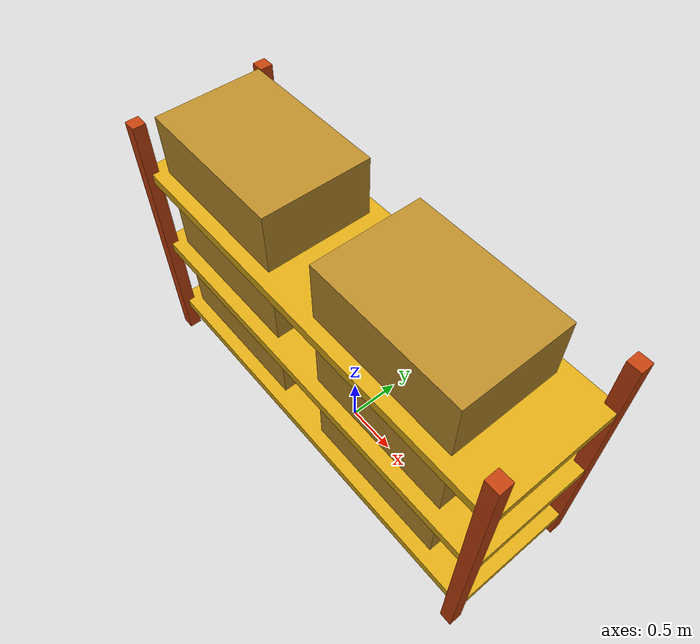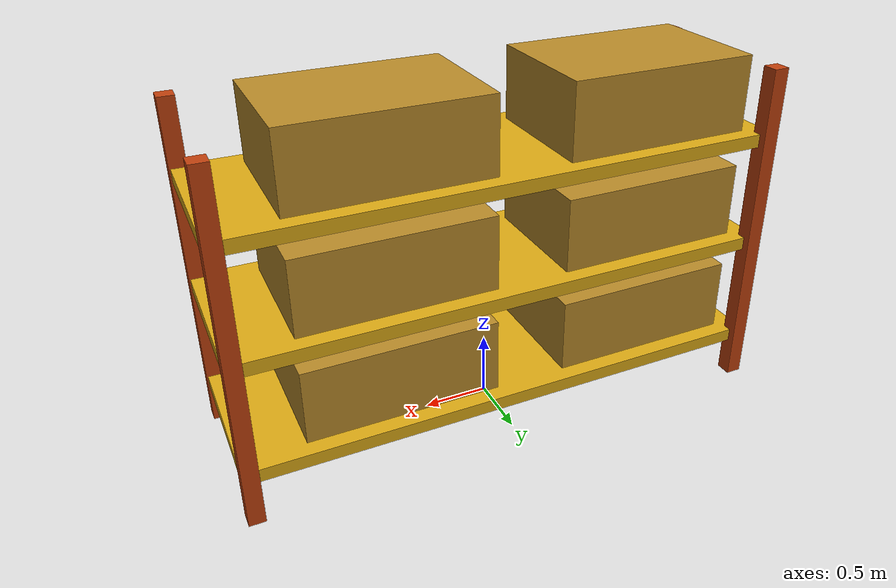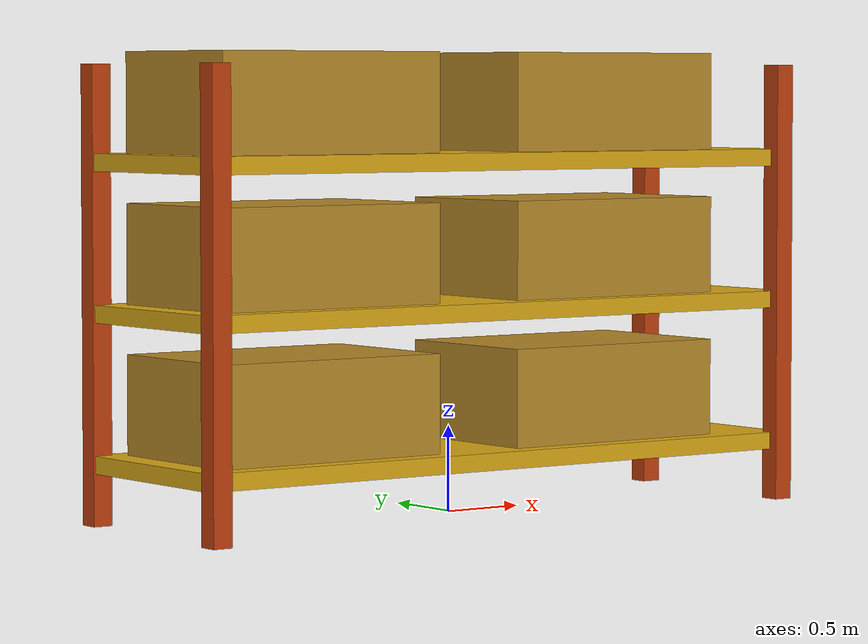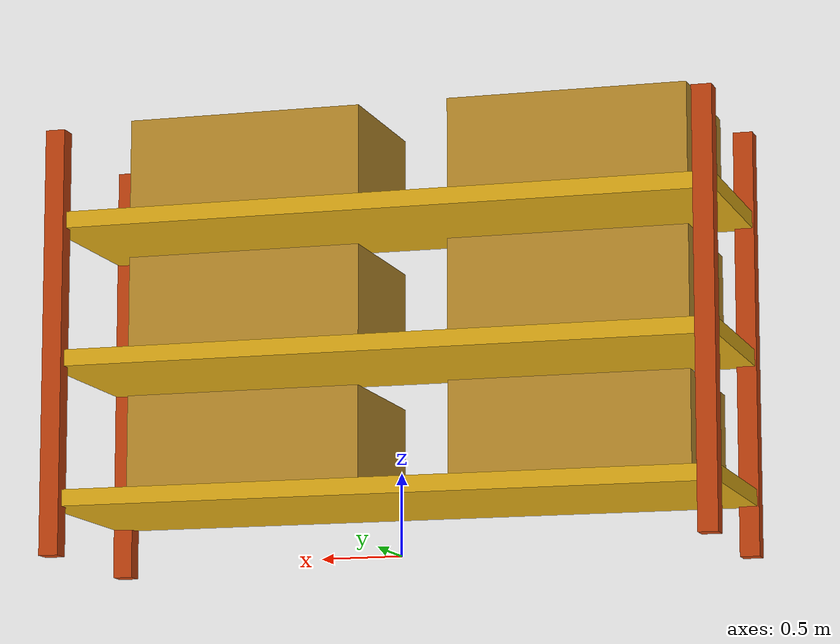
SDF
<?xml version="1.0"?>
<!-- Reusable local pallet rack: orange frame, yellow decks, and cartons. -->
<sdf version="1.9">
  <model name="pallet_rack">
    <static>true</static>
    <link name="frame">
      <collision name="left_front"><pose>-2 -0.62 1.3 0 0 0</pose><geometry><box><size>.12 .12 2.6</size></box></geometry></collision>
      <collision name="left_back"><pose>-2 .62 1.3 0 0 0</pose><geometry><box><size>.12 .12 2.6</size></box></geometry></collision>
      <collision name="right_front"><pose>2 -0.62 1.3 0 0 0</pose><geometry><box><size>.12 .12 2.6</size></box></geometry></collision>
      <collision name="right_back"><pose>2 .62 1.3 0 0 0</pose><geometry><box><size>.12 .12 2.6</size></box></geometry></collision>
      <collision name="deck_low"><pose>0 0 .35 0 0 0</pose><geometry><box><size>4.1 1.25 .10</size></box></geometry></collision>
      <collision name="deck_mid"><pose>0 0 1.2 0 0 0</pose><geometry><box><size>4.1 1.25 .10</size></box></geometry></collision>
      <collision name="deck_top"><pose>0 0 2.05 0 0 0</pose><geometry><box><size>4.1 1.25 .10</size></box></geometry></collision>
      <visual name="left_front"><pose>-2 -0.62 1.3 0 0 0</pose><geometry><box><size>.12 .12 2.6</size></box></geometry><material><diffuse>.75 .25 .05 1</diffuse></material></visual>
      <visual name="left_back"><pose>-2 .62 1.3 0 0 0</pose><geometry><box><size>.12 .12 2.6</size></box></geometry><material><diffuse>.75 .25 .05 1</diffuse></material></visual>
      <visual name="right_front"><pose>2 -0.62 1.3 0 0 0</pose><geometry><box><size>.12 .12 2.6</size></box></geometry><material><diffuse>.75 .25 .05 1</diffuse></material></visual>
      <visual name="right_back"><pose>2 .62 1.3 0 0 0</pose><geometry><box><size>.12 .12 2.6</size></box></geometry><material><diffuse>.75 .25 .05 1</diffuse></material></visual>
      <visual name="deck_low"><pose>0 0 .35 0 0 0</pose><geometry><box><size>4.1 1.25 .10</size></box></geometry><material><diffuse>.86 .66 .08 1</diffuse></material></visual>
      <visual name="deck_mid"><pose>0 0 1.2 0 0 0</pose><geometry><box><size>4.1 1.25 .10</size></box></geometry><material><diffuse>.86 .66 .08 1</diffuse></material></visual>
      <visual name="deck_top"><pose>0 0 2.05 0 0 0</pose><geometry><box><size>4.1 1.25 .10</size></box></geometry><material><diffuse>.86 .66 .08 1</diffuse></material></visual>
    </link>
    <link name="cartons">
      <visual name="carton_1"><pose>-1.15 0 .68 0 0 0</pose><geometry><box><size>1.45 1.0 .58</size></box></geometry><material><diffuse>.72 .54 .16 1</diffuse></material></visual>
      <visual name="carton_2"><pose>.85 0 .68 0 0 0</pose><geometry><box><size>1.45 1.0 .58</size></box></geometry><material><diffuse>.72 .54 .16 1</diffuse></material></visual>
      <visual name="carton_3"><pose>-1.15 0 1.53 0 0 0</pose><geometry><box><size>1.45 1.0 .58</size></box></geometry><material><diffuse>.72 .54 .16 1</diffuse></material></visual>
      <visual name="carton_4"><pose>.85 0 1.53 0 0 0</pose><geometry><box><size>1.45 1.0 .58</size></box></geometry><material><diffuse>.72 .54 .16 1</diffuse></material></visual>
      <visual name="carton_5"><pose>-1.15 0 2.38 0 0 0</pose><geometry><box><size>1.45 1.0 .58</size></box></geometry><material><diffuse>.72 .54 .16 1</diffuse></material></visual>
      <visual name="carton_6"><pose>.85 0 2.38 0 0 0</pose><geometry><box><size>1.45 1.0 .58</size></box></geometry><material><diffuse>.72 .54 .16 1</diffuse></material></visual>
    </link>
  </model>
</sdf>
